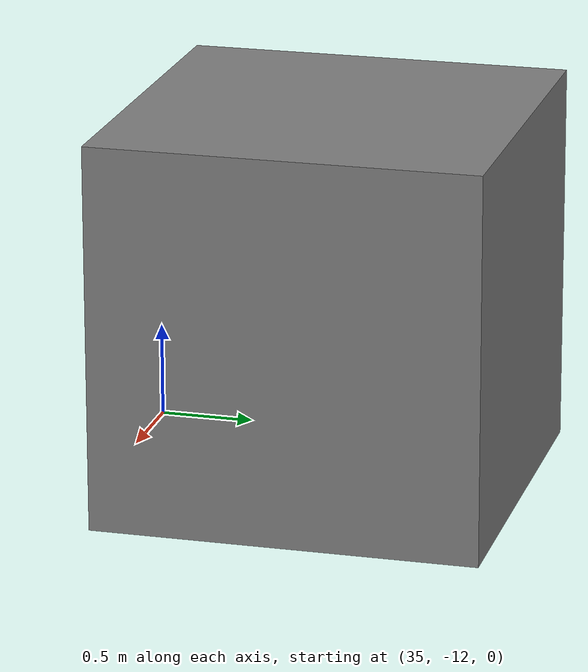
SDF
<?xml version="1.0"?>
<sdf version="1.6">
  <model name="gray_box">
    <pose>35.758200 -10.858900 1.000000 0 0 0</pose>

    <link name="link">
      <visual name="visual">
        <geometry>
          <box>
            <size>2 2 2</size>
          </box>
        </geometry>
        <material>
          <ambient>0.5 0.5 0.5 1</ambient>
          <diffuse>0.5 0.5 0.5 1</diffuse>
        </material>
      </visual>

      <collision name="collision">
        <geometry>
          <box>
            <size>2 2 2</size>
          </box>
        </geometry>
      </collision>
    </link>

    <joint name="move_joint_y" type="prismatic">
      <parent>world</parent>
      <child>link</child>
      <pose>0 0 0 0 0 0</pose>
      <axis>
        <xyz>0 1 0</xyz>
        <limit>
          <lower>-74.858900</lower>
          <upper>-64.858900</upper>
          <effort>100</effort>
          <velocity>2.0</velocity>
        </limit>
      </axis>
    </joint>

    <!-- X축 회전 (두 번째 프리즘틱 조인트) -->
    <joint name="move_joint_x" type="prismatic">
      <parent>world</parent>
      <child>link</child>
      <pose>0 0 0 0 0 0</pose>
      <axis>
        <xyz>1 0 0</xyz>
        <limit>
          <lower>-64.858900</lower>
          <upper>64.858900</upper>
          <effort>100</effort>
          <velocity>2.0</velocity>
        </limit>
      </axis>
    </joint>

  </model>
</sdf>
